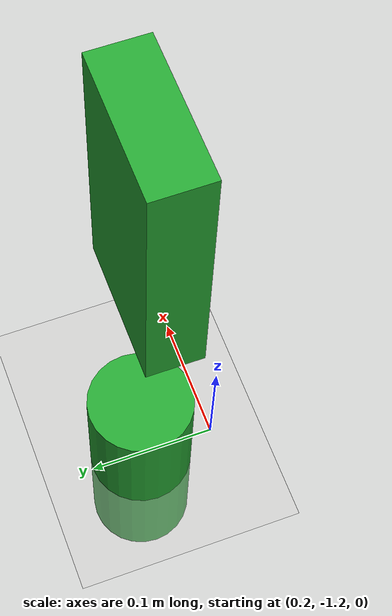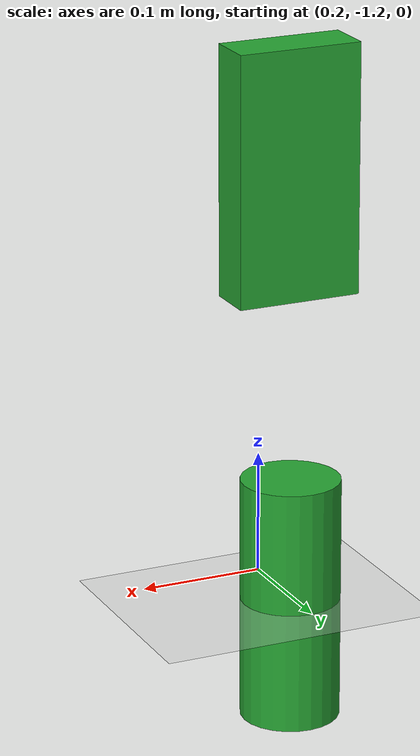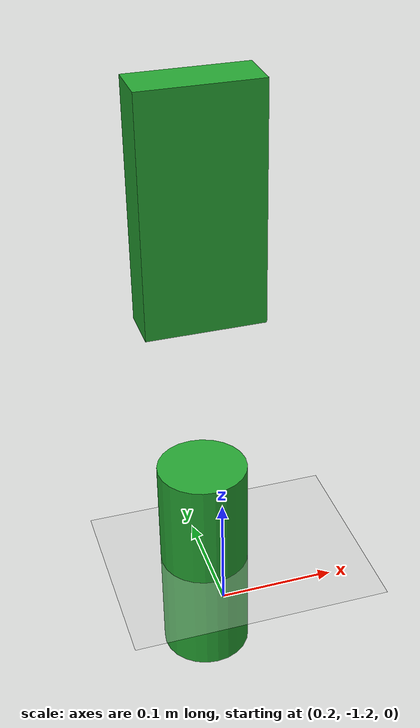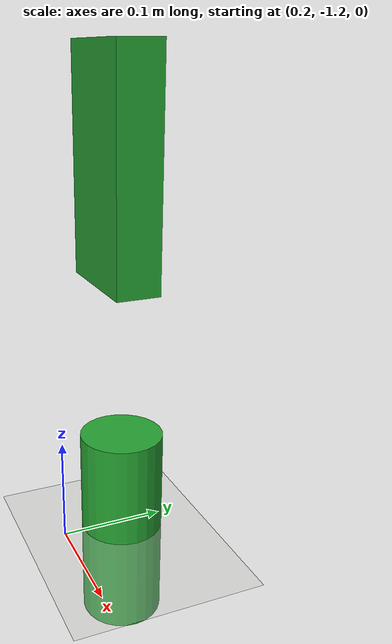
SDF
<?xml version="1.0" ?>
<sdf version="1.4">
    <world name="default">
        <include>
            <uri>model://sun</uri>
        </include>
        <model name="ground_plane">
    <static>true</static>
    <link name="link">
      <collision name="collision">
        <geometry>
          <plane>
            <normal>0 0 1</normal>
            <size>100 100</size>
          </plane>
        </geometry>
        <surface>
          <friction>
            <ode>
              <mu>100</mu>
              <mu2>50</mu2>
            </ode>
          </friction>
        </surface>
      </collision>
      <visual name="visual">
        <cast_shadows>false</cast_shadows>
        <geometry>
          <plane>
            <normal>0 0 1</normal>
            <size>100 100</size>
          </plane>
        </geometry>
        <material>
          <script>
            <uri>file://media/materials/scripts/gazebo.material</uri>
            <name>Gazebo/Grey</name>
          </script>
        </material>
      </visual>
    </link>
</model>
        <physics type='ode'>
            <max_step_size>0.001</max_step_size>
            <real_time_factor>1</real_time_factor>
            <real_time_update_rate>0</real_time_update_rate>
            <gravity>0 0 -9.81</gravity>
            <ode>
                <solver>
                    <iters>200</iters>
                    <sor>1.0</sor>
                </solver>
            </ode>
        </physics>

    <model name='box'>
      <pose>0.2 -1.145 0.35 0 0 0</pose>
      <link name='link'>
        <inertial>
          <mass>0.01</mass>
          <inertia>
            <ixx>0.0001</ixx>
            <ixy>0</ixy>
            <ixz>0</ixz>
            <iyy>0.0001</iyy>
            <iyz>0</iyz>
            <izz>0.0001</izz>
          </inertia>
        </inertial>
        <collision name='collision'>
          <geometry>
            <box>
              <size>0.1 0.04 0.2</size>
            </box>
          </geometry>
          <max_contacts>10</max_contacts>
          <surface>
            <bounce/>
            <friction>
              <ode><mu>10000000</mu><mu2>10000000</mu2></ode>
              <ode/>
            </friction>
            <contact>
              <ode/>
            </contact>
          </surface>
        </collision>
        <visual name='visual'>
          <geometry>
            <box>
              <size>0.1 0.04 0.2</size>
            </box>
          </geometry>
          <material>
            <script>
              <uri>file://media/materials/scripts/gazebo.material</uri>
              <name>Gazebo/Green</name>
            </script>
          </material>
        </visual>
        <velocity_decay>
          <linear>0</linear>
          <angular>0</angular>
        </velocity_decay>
        <self_collide>0</self_collide>
        <kinematic>0</kinematic>
        <gravity>1</gravity>
      </link>
      <static>0</static>
    </model>

    <model name='cylinder2'>
      <pose>0.2 -1.14 0 0 0 0</pose>
      <link name='link'>
        <inertial>
          <mass>1</mass>
          <inertia>
            <ixx>0.01</ixx>
            <ixy>0</ixy>
            <ixz>0</ixz>
            <iyy>0.01</iyy>
            <iyz>0</iyz>
            <izz>0.01</izz>
          </inertia>
        </inertial>
        <collision name='collision'>
          <geometry>
            <cylinder>
              <radius>0.04</radius>
              <length>0.2</length>
            </cylinder>
          </geometry>
          <max_contacts>10</max_contacts>
          <surface>
            <bounce/>
            <friction>
              <ode><mu>0</mu><mu2>0</mu2></ode>
              <ode/>
            </friction>
            <contact>
              <ode/>
            </contact>
          </surface>
        </collision>
        <visual name='visual'>
          <geometry>
            <cylinder>
              <radius>0.04</radius>
              <length>0.2</length>
            </cylinder>
          </geometry>
          <material>
            <script>
              <uri>file://media/materials/scripts/gazebo.material</uri>
              <name>Gazebo/Green</name>
            </script>
          </material>
        </visual>
        <velocity_decay>
          <linear>0</linear>
          <angular>0</angular>
        </velocity_decay>
        <self_collide>0</self_collide>
        <kinematic>0</kinematic>
        <gravity>1</gravity>
      </link>
      <static>0</static>
    </model>

    </world>
</sdf>
